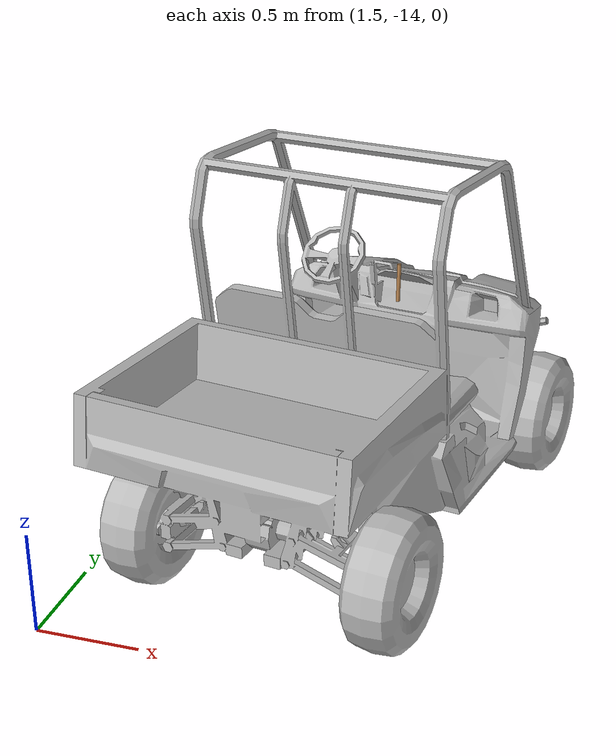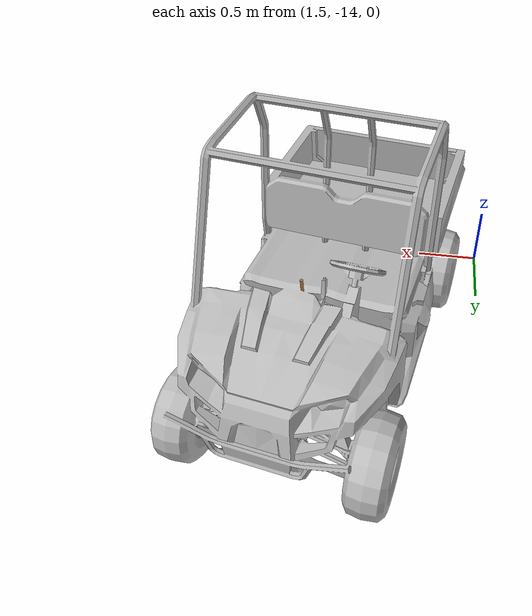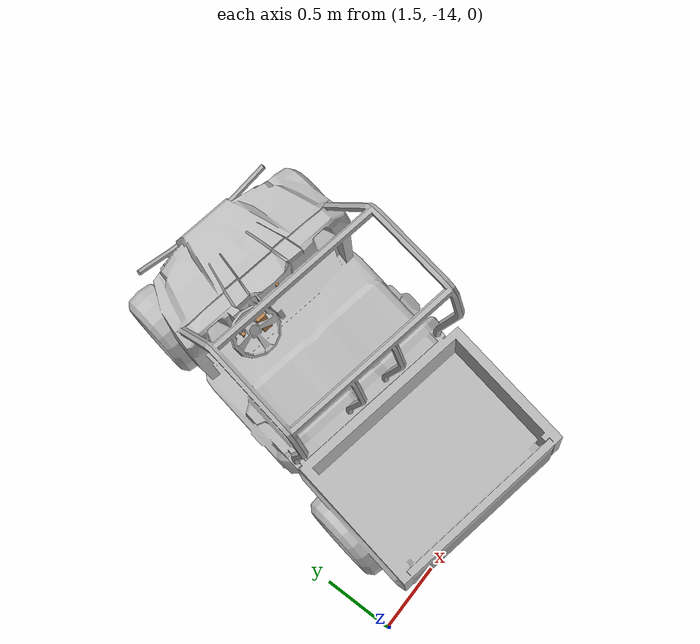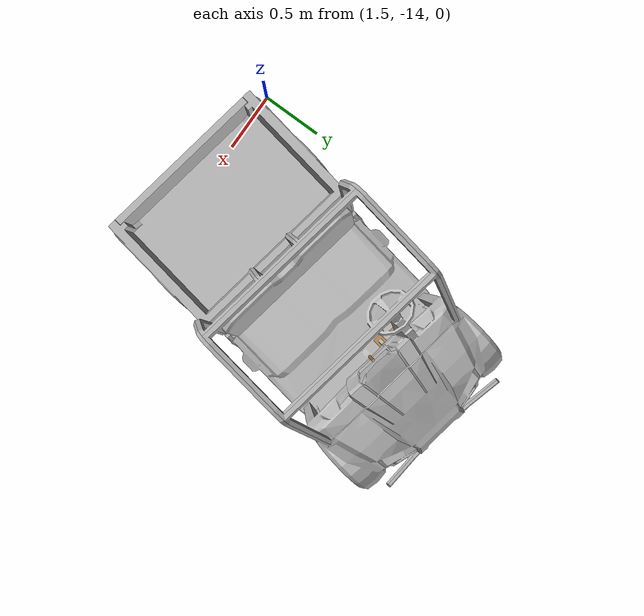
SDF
<sdf version="1.6">
 <world name="default">
  <model name="polaris_ranger_ev_clone_1_clone_clone_clone_clone_6">
   <static>true</static>
   <link name="chassis">
    <inertial>
     <mass>720</mass>
     <inertia><ixx>140</ixx><ixy>0</ixy><iyy>550</iyy><ixz>0</ixz><iyz>0</iyz><izz>550</izz></inertia>
    </inertial>
    <visual name="visual">
     <pose>0 0 0 0 0 -1.5708</pose>
     <geometry><mesh><uri>model://polaris_ranger_ev/meshes/polaris.dae</uri><scale>1 1 1</scale></mesh></geometry>
     <material>
      <script>
       <uri>model://polaris_ranger_ev/materials/scripts</uri>
       <uri>model://polaris_ranger_ev/materials/textures</uri>
       <name>Polaris/Diffuse</name>
      </script>
     </material>
    </visual>
    <collision name="chassis_bottom">
     <pose>0 0 0.35 0 -0 0</pose>
     <geometry><box><size>2 1 0.1</size></box></geometry>
    </collision>
    <collision name="cargo_bottom">
     <pose>-0.9 0 0.9 0 -0 0</pose>
     <geometry><box><size>0.9 1.2 0.01</size></box></geometry>
    </collision>
    <collision name="cargo_front">
     <pose>-0.45 0 1.025 0 -0 0</pose>
     <geometry><box><size>0.05 1.2 0.25</size></box></geometry>
    </collision>
    <collision name="cargo_back">
     <pose>-1.35 0 1.025 0 -0 0</pose>
     <geometry><box><size>0.05 1.2 0.25</size></box></geometry>
    </collision>
    <collision name="cargo_left">
     <pose>-0.9 0.6 1.025 0 -0 0</pose>
     <geometry><box><size>0.9 0.05 0.25</size></box></geometry>
    </collision>
    <collision name="cargo_right">
     <pose>-0.9 -0.6 1.025 0 -0 0</pose>
     <geometry><box><size>0.9 0.05 0.25</size></box></geometry>
    </collision>
    <collision name="seat">
     <pose>-0.1 0 0.625 0 -0 0</pose>
     <geometry><box><size>0.6 1 0.65</size></box></geometry>
    </collision>
    <collision name="seat_back">
     <pose>-0.3 0 1.125 0 -0.2 0</pose>
     <geometry><box><size>0.1 1 0.4</size></box></geometry>
    </collision>
    <collision name="engine">
     <pose>0.95 0 0.7 0 -0 0</pose>
     <geometry><box><size>0.58 1 0.8</size></box></geometry>
    </collision>
    <collision name="steering_column">
     <pose>0.525 0.3 1.025 0 -0.8 0</pose>
     <geometry><cylinder><radius>0.05</radius><length>0.45</length></cylinder></geometry>
    </collision>
   </link>
   <link name="rear_right_wheel">
    <pose>-0.85 -0.6 0.32 1.5708 -0 0</pose>
    <inertial>
     <mass>12</mass>
     <inertia><ixx>0.5</ixx><ixy>0</ixy><iyy>0.5</iyy><ixz>0</ixz><iyz>0</iyz><izz>1</izz></inertia>
    </inertial>
    <collision name="collision">
     <geometry><cylinder><radius>0.32</radius><length>0.23</length></cylinder></geometry>
     <surface>
      <friction><ode><mu>100000</mu><mu2>100000</mu2><slip1>0</slip1><slip2>0</slip2></ode></friction>
     </surface>
    </collision>
   </link>
   <joint name="rear_right_wheel_joint" type="revolute">
    <pose>0 0 -0.1 0 -0 0</pose>
    <child>rear_right_wheel</child>
    <parent>chassis</parent>
    <axis>
     <xyz>0 1 0</xyz>
     <use_parent_model_frame>1</use_parent_model_frame>
     <limit><lower>-1e+16</lower><upper>1e+16</upper></limit>
     <dynamics><spring_reference>0</spring_reference><spring_stiffness>0</spring_stiffness></dynamics>
    </axis>
    <physics><ode><limit><cfm>0</cfm><erp>0.9</erp></limit></ode></physics>
   </joint>
   <link name="rear_left_wheel">
    <pose>-0.85 0.6 0.32 1.5708 -0 0</pose>
    <inertial>
     <mass>12</mass>
     <inertia><ixx>0.5</ixx><ixy>0</ixy><iyy>0.5</iyy><ixz>0</ixz><iyz>0</iyz><izz>1</izz></inertia>
    </inertial>
    <collision name="collision">
     <geometry><cylinder><radius>0.32</radius><length>0.23</length></cylinder></geometry>
     <surface>
      <friction><ode><mu>100000</mu><mu2>100000</mu2><slip1>0</slip1><slip2>0</slip2></ode></friction>
     </surface>
    </collision>
   </link>
   <joint name="rear_left_wheel_joint" type="revolute">
    <child>rear_left_wheel</child>
    <parent>chassis</parent>
    <axis>
     <xyz>0 1 0</xyz>
     <use_parent_model_frame>1</use_parent_model_frame>
     <limit><lower>-1e+16</lower><upper>1e+16</upper></limit>
     <dynamics><spring_reference>0</spring_reference><spring_stiffness>0</spring_stiffness></dynamics>
    </axis>
    <physics><ode><limit><cfm>0</cfm><erp>0.9</erp></limit></ode></physics>
   </joint>
   <link name="front_right_wheel">
    <pose>1.03 -0.6 0.32 1.5708 -0 0</pose>
    <inertial>
     <mass>12</mass>
     <inertia><ixx>0.5</ixx><ixy>0</ixy><iyy>0.5</iyy><ixz>0</ixz><iyz>0</iyz><izz>1</izz></inertia>
    </inertial>
    <collision name="collision">
     <geometry><cylinder><radius>0.32</radius><length>0.23</length></cylinder></geometry>
     <surface>
      <friction><ode><mu>100000</mu><mu2>100000</mu2><slip1>0</slip1><slip2>0</slip2></ode></friction>
     </surface>
    </collision>
   </link>
   <link name="front_right_wheel_steering_block">
    <pose>1.03 -0.5 0.32 1.5708 -0 0</pose>
    <inertial>
     <mass>1</mass>
     <inertia><ixx>1</ixx><ixy>0</ixy><iyy>1</iyy><ixz>0</ixz><iyz>0</iyz><izz>1</izz></inertia>
    </inertial>
    <collision name="collision">
     <geometry><cylinder><radius>0.05</radius><length>0.01</length></cylinder></geometry>
    </collision>
   </link>
   <joint name="front_right_steering_joint" type="revolute">
    <child>front_right_wheel_steering_block</child>
    <parent>chassis</parent>
    <axis>
     <xyz>0 0 1</xyz>
     <limit><lower>-1</lower><upper>1</upper></limit>
     <use_parent_model_frame>1</use_parent_model_frame>
     <dynamics><spring_reference>0</spring_reference><spring_stiffness>0</spring_stiffness></dynamics>
    </axis>
    <physics><ode><limit><cfm>0</cfm><erp>0.9</erp></limit></ode></physics>
   </joint>
   <joint name="front_right_wheel_joint" type="revolute">
    <child>front_right_wheel</child>
    <parent>front_right_wheel_steering_block</parent>
    <axis>
     <xyz>0 1 0</xyz>
     <use_parent_model_frame>1</use_parent_model_frame>
     <limit><lower>-1e+16</lower><upper>1e+16</upper></limit>
     <dynamics><spring_reference>0</spring_reference><spring_stiffness>0</spring_stiffness></dynamics>
    </axis>
    <physics><ode><limit><cfm>0</cfm><erp>0.9</erp></limit></ode></physics>
   </joint>
   <link name="front_left_wheel">
    <pose>1.03 0.6 0.32 1.5708 -0 0</pose>
    <inertial>
     <mass>12</mass>
     <inertia><ixx>0.5</ixx><ixy>0</ixy><iyy>0.5</iyy><ixz>0</ixz><iyz>0</iyz><izz>1</izz></inertia>
    </inertial>
    <collision name="collision">
     <geometry><cylinder><radius>0.32</radius><length>0.23</length></cylinder></geometry>
     <surface>
      <friction><ode><mu>100000</mu><mu2>100000</mu2><slip1>0</slip1><slip2>0</slip2></ode></friction>
     </surface>
    </collision>
   </link>
   <link name="front_left_wheel_steering_block">
    <pose>1.03 0.5 0.32 1.5708 -0 0</pose>
    <inertial>
     <mass>1</mass>
     <inertia><ixx>1</ixx><ixy>0</ixy><iyy>1</iyy><ixz>0</ixz><iyz>0</iyz><izz>1</izz></inertia>
    </inertial>
    <collision name="collision">
     <geometry><cylinder><radius>0.05</radius><length>0.01</length></cylinder></geometry>
    </collision>
   </link>
   <joint name="front_left_steering_joint" type="revolute">
    <child>front_left_wheel_steering_block</child>
    <parent>chassis</parent>
    <axis>
     <xyz>0 0 1</xyz>
     <limit><lower>-1</lower><upper>1</upper></limit>
     <use_parent_model_frame>1</use_parent_model_frame>
     <dynamics><spring_reference>0</spring_reference><spring_stiffness>0</spring_stiffness></dynamics>
    </axis>
    <physics><ode><limit><cfm>0</cfm><erp>0.9</erp></limit></ode></physics>
   </joint>
   <joint name="front_left_wheel_joint" type="revolute">
    <child>front_left_wheel</child>
    <parent>front_left_wheel_steering_block</parent>
    <axis>
     <xyz>0 1 0</xyz>
     <use_parent_model_frame>1</use_parent_model_frame>
     <limit><lower>-1e+16</lower><upper>1e+16</upper></limit>
     <dynamics><spring_reference>0</spring_reference><spring_stiffness>0</spring_stiffness></dynamics>
    </axis>
    <physics><ode><limit><cfm>0</cfm><erp>0.9</erp></limit></ode></physics>
   </joint>
   <link name="gas_pedal">
    <pose>0.53 0.14 0.56 0 -1 0</pose>
    <gravity>0</gravity>
    <inertial>
     <mass>0.1</mass>
     <inertia><ixx>0.01</ixx><ixy>0</ixy><ixz>0</ixz><iyy>0.01</iyy><iyz>0</iyz><izz>0.01</izz></inertia>
    </inertial>
    <collision name="gas_pedal_collision"><geometry><box><size>0.12 0.07 0.03</size></box></geometry></collision>
    <visual name="gas_pedal_visual">
     <geometry><box><size>0.12 0.07 0.03</size></box></geometry>
     <material>
      <script><uri>file://media/materials/scripts/gazebo.material</uri><name>Gazebo/Wood</name></script>
      <ambient>0.2 0.2 0.2 1</ambient>
      <diffuse>0.2 0.2 0.2 1</diffuse>
      <specular>0.2 0.2 0.2 1</specular>
      <emissive>0.5 0.5 0.5 1</emissive>
     </material>
    </visual>
   </link>
   <link name="brake_pedal">
    <gravity>0</gravity>
    <pose>0.54 0.27 0.58 0 -1 0</pose>
    <inertial>
     <mass>0.1</mass>
     <inertia><ixx>0.01</ixx><ixy>0</ixy><ixz>0</ixz><iyy>0.01</iyy><iyz>0</iyz><izz>0.01</izz></inertia>
    </inertial>
    <collision name="brake_pedal_collision">
     <geometry><box><size>0.06 0.08 0.03</size></box></geometry>
    </collision>
    <visual name="brake_pedal_visual">
     <geometry><box><size>0.06 0.08 0.03</size></box></geometry>
     <material>
      <script><uri>file://media/materials/scripts/gazebo.material</uri><name>Gazebo/Wood</name></script>
      <ambient>0.2 0.2 0.2 1</ambient>
      <diffuse>0.2 0.2 0.2 1</diffuse>
      <specular>0.2 0.2 0.2 1</specular>
      <emissive>0.5 0.5 0.5 1</emissive>
     </material>
    </visual>
   </link>
   <link name="steering_wheel">
    <pose>0.37 0.3 1.2 0 -0.8 0</pose>
    <inertial>
     <mass>1</mass>
     <inertia><ixx>0.1</ixx><ixy>0</ixy><ixz>0</ixz><iyy>0.1</iyy><iyz>0</iyz><izz>1</izz></inertia>
    </inertial>
    <collision name="steering_wheel_post_left">
     <pose>0 0.08 0 1.5708 -0 0</pose>
     <geometry><cylinder><radius>0.02</radius><length>0.15</length></cylinder></geometry>
    </collision>
    <collision name="steering_wheel_post_right">
     <pose>0 -0.08 0 1.5708 -0 0</pose>
     <geometry><cylinder><radius>0.02</radius><length>0.15</length></cylinder></geometry>
    </collision>
    <collision name="steering_wheel_post_middle">
     <pose>-0.08 0 0 3.14159 1.57079 3.14159</pose>
     <geometry><cylinder><radius>0.02</radius><length>0.15</length></cylinder></geometry>
    </collision>
    <collision name="collision00">
     <pose>0.15 0 0 3.14159 1.57079 -1.57079</pose>
     <geometry><cylinder><length>0.105066</length><radius>0.01</radius></cylinder></geometry>
    </collision>
    <collision name="collision01">
     <pose>0.121353 0.088168 0 3.14159 1.57079 -0.942483</pose>
     <geometry><cylinder><length>0.105066</length><radius>0.01</radius></cylinder></geometry>
    </collision>
    <collision name="collision02">
     <pose>0.046353 0.142658 0 3.14159 1.57079 -0.314163</pose>
     <geometry><cylinder><length>0.105066</length><radius>0.01</radius></cylinder></geometry>
    </collision>
    <collision name="collision03">
     <pose>-0.046353 0.142658 0 3.14159 1.57079 0.314163</pose>
     <geometry><cylinder><length>0.105066</length><radius>0.01</radius></cylinder></geometry>
    </collision>
    <collision name="collision04">
     <pose>-0.121353 0.088168 0 -3.14159 1.57079 0.942483</pose>
     <geometry><cylinder><length>0.105066</length><radius>0.01</radius></cylinder></geometry>
    </collision>
    <collision name="collision05">
     <pose>-0.15 0 0 -3.14159 1.57079 1.57079</pose>
     <geometry><cylinder><length>0.105066</length><radius>0.01</radius></cylinder></geometry>
    </collision>
    <collision name="collision06">
     <pose>-0.121353 -0.088168 0 3.14159 1.57079 2.19912</pose>
     <geometry><cylinder><length>0.105066</length><radius>0.01</radius></cylinder></geometry>
    </collision>
    <collision name="collision07">
     <pose>-0.046353 -0.142658 0 -3.14159 1.57079 2.82743</pose>
     <geometry><cylinder><length>0.105066</length><radius>0.01</radius></cylinder></geometry>
    </collision>
    <collision name="collision08">
     <pose>0.046353 -0.142658 0 3.14159 1.57079 -2.82743</pose>
     <geometry><cylinder><length>0.105066</length><radius>0.01</radius></cylinder></geometry>
    </collision>
    <collision name="collision09">
     <pose>0.121353 -0.088168 0 -3.14159 1.57079 -2.19911</pose>
     <geometry><cylinder><length>0.105066</length><radius>0.01</radius></cylinder></geometry>
    </collision>
   </link>
   <link name="hand_brake">
    <pose>0.5 0 1.05 3.14159 -0.058407 3.14159</pose>
    <inertial>
     <mass>1</mass>
     <pose>0 0 -0.15 0 -0 0</pose>
     <inertia><ixx>0.1</ixx><ixy>0</ixy><ixz>0</ixz><iyy>0.1</iyy><iyz>0</iyz><izz>1</izz></inertia>
    </inertial>
    <collision name="hand_brake_collision">
     <pose>0 0 -0.1 0 -0 0</pose>
     <geometry><cylinder><radius>0.01</radius><length>0.2</length></cylinder></geometry>
    </collision>
    <visual name="hand_brake_visual">
     <pose>0 0 -0.1 0 -0 0</pose>
     <geometry><cylinder><radius>0.01</radius><length>0.2</length></cylinder></geometry>
     <material>
      <script><uri>file://media/materials/scripts/gazebo.material</uri><name>Gazebo/Wood</name></script>
     </material>
    </visual>
   </link>
   <joint name="gas_joint" type="prismatic">
    <parent>chassis</parent>
    <child>gas_pedal</child>
    <axis>
     <xyz>1 0 -1</xyz>
     <limit><lower>0</lower><upper>0.15</upper></limit>
     <use_parent_model_frame>1</use_parent_model_frame>
     <dynamics><spring_reference>0</spring_reference><spring_stiffness>0</spring_stiffness></dynamics>
    </axis>
   </joint>
   <joint name="brake_joint" type="prismatic">
    <parent>chassis</parent>
    <child>brake_pedal</child>
    <axis>
     <xyz>1 0 -0.6</xyz>
     <limit><lower>0</lower><upper>0.15</upper></limit>
     <use_parent_model_frame>1</use_parent_model_frame>
     <dynamics><spring_reference>0</spring_reference><spring_stiffness>0</spring_stiffness></dynamics>
    </axis>
   </joint>
   <joint name="steering_joint" type="revolute">
    <pose>0 0 0 1.5708 -0.8 0</pose>
    <parent>chassis</parent>
    <child>steering_wheel</child>
    <axis>
     <xyz>-1 0 1.023</xyz>
     <limit><lower>-7.853</lower><upper>7.853</upper></limit>
     <use_parent_model_frame>1</use_parent_model_frame>
     <dynamics><spring_reference>0</spring_reference><spring_stiffness>0</spring_stiffness></dynamics>
    </axis>
   </joint>
   <joint name="hand_brake_joint" type="revolute">
    <parent>chassis</parent>
    <child>hand_brake</child>
    <axis>
     <xyz>0 -1 0</xyz>
     <limit><lower>0</lower><upper>0.6</upper></limit>
     <use_parent_model_frame>1</use_parent_model_frame>
     <dynamics><spring_reference>0</spring_reference><spring_stiffness>0</spring_stiffness></dynamics>
    </axis>
   </joint>
   <pose>2.61987 -12.6716 -5.2e-05 0 4.8e-05 1.3937</pose>
  </model>
 </world>
</sdf>
